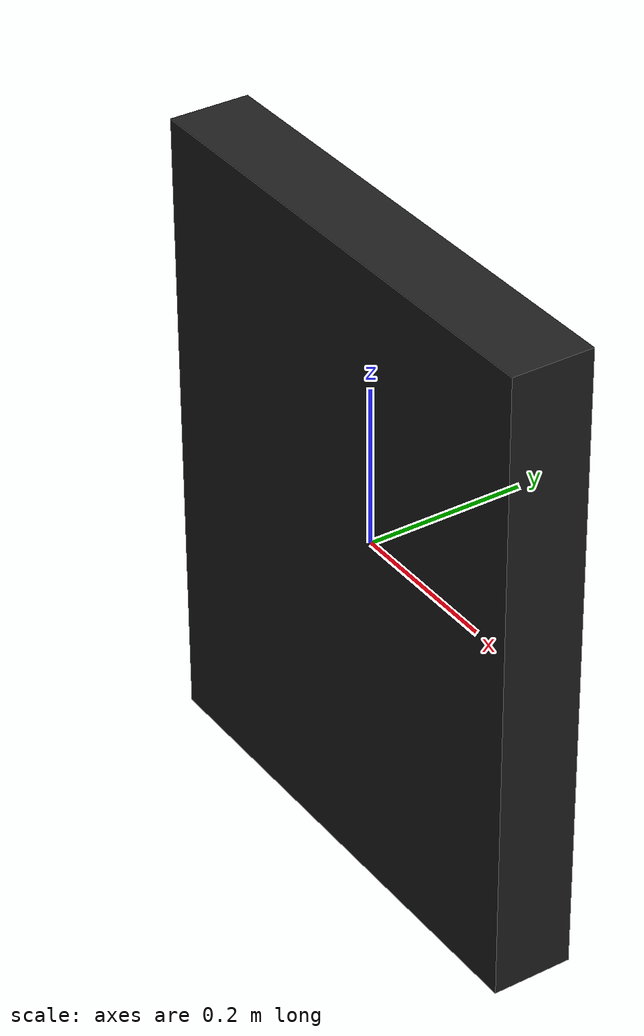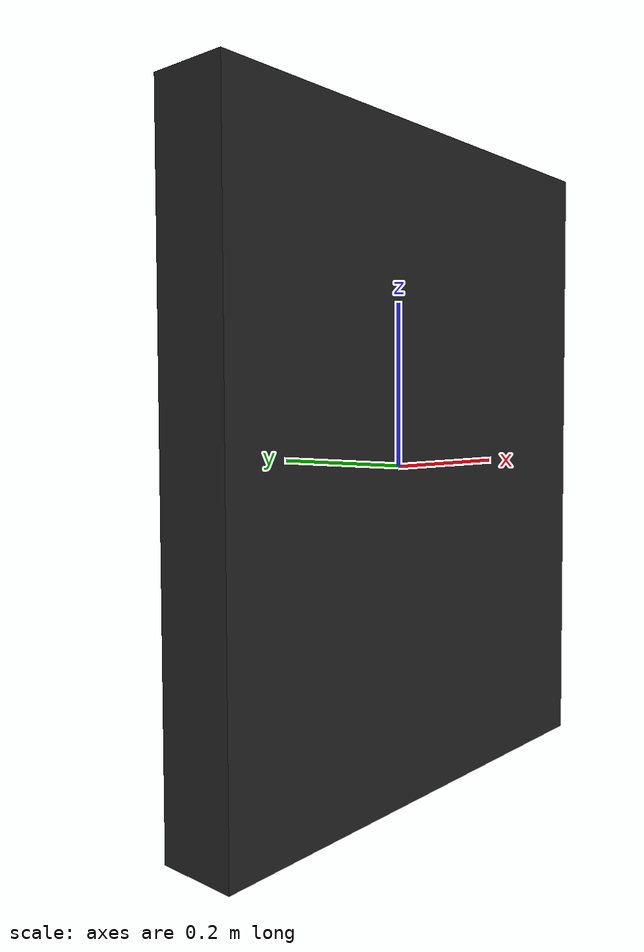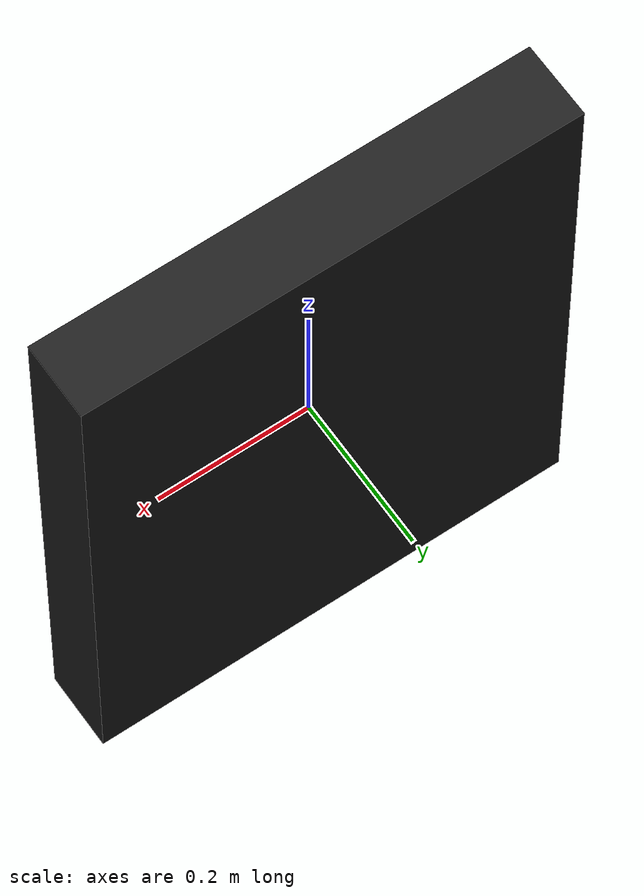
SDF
<?xml version='1.0'?>
<sdf version="1.4">
<model name="fst_rig_plate">
  <static>true</static>
    <static>true</static>
    <link name="link">
      <collision name="collision_fst_rig">
        <geometry>
          <box>
            <size>0.64 0.1 0.8</size>
          </box>
        </geometry>
      </collision>
      <visual name="visual_fst_rig">
        <geometry>
          <box>
            <size>0.64 0.1 0.8</size>
          </box>
        </geometry>
        <material>
          <script>
            <uri>file://media/materials/scripts/gazebo.material</uri>
            <name>Gazebo/Black</name>
          </script>
        </material>
      </visual>
    </link>
  </model>
</sdf>
